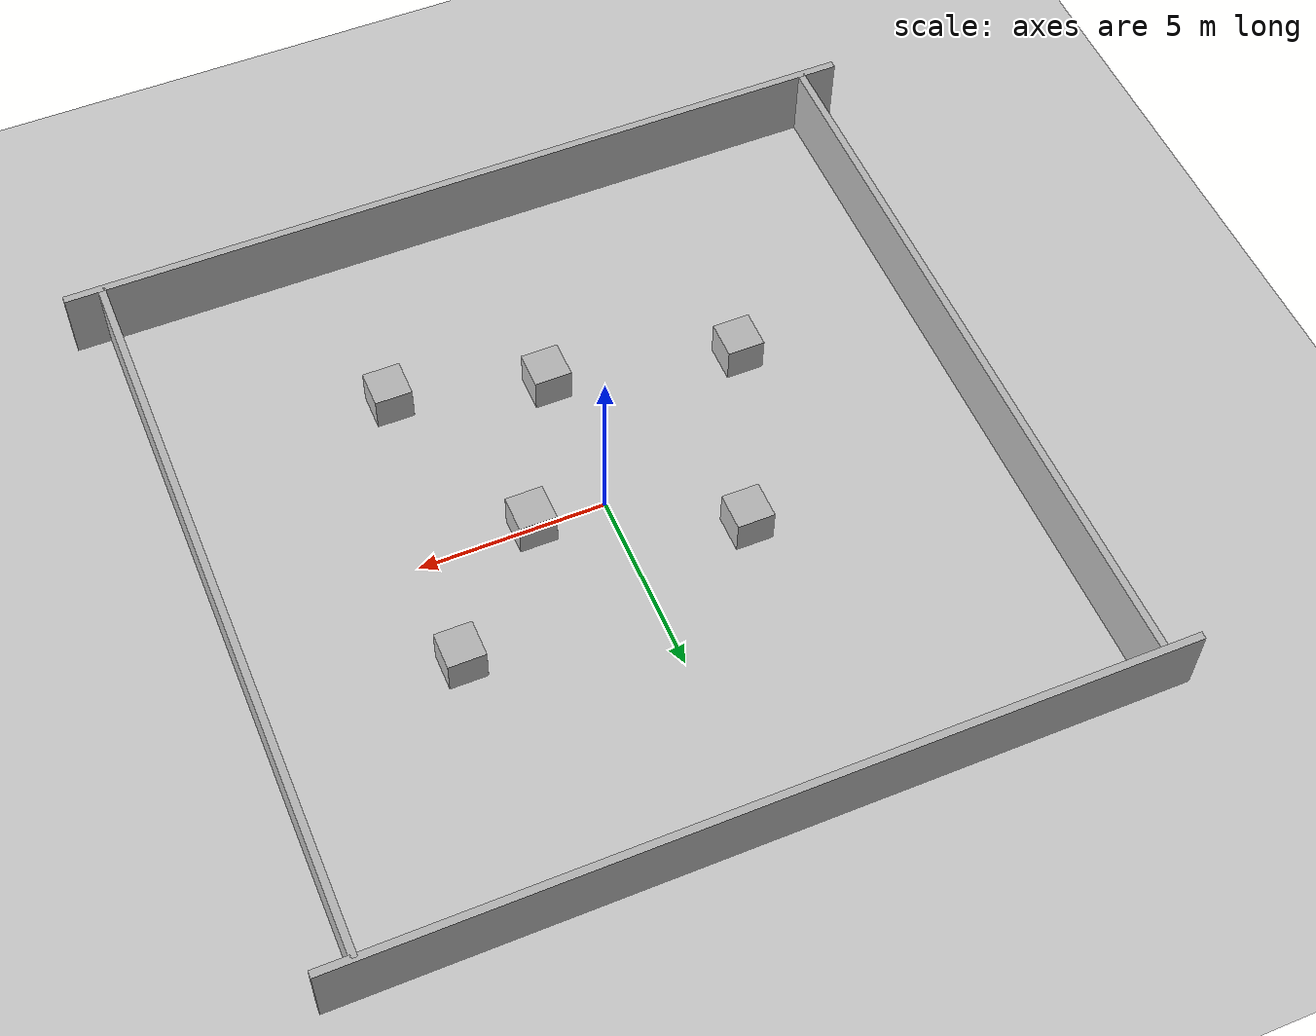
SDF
<?xml version="1.0" ?>
<sdf version="1.6">
  <world name="default">

    <include>
      <uri>model://ground_plane</uri>
    </include>

    <include>
      <uri>model://sun</uri>
    </include>

    <physics type="ode">
      <gravity>0 0 -9.8</gravity>
      <max_step_size>0.001</max_step_size>
      <real_time_update_rate>500</real_time_update_rate>
      <real_time_factor>1.0</real_time_factor>
    </physics>

    <model name="wall_north">
      <static>true</static>
      <pose>0 10 1 0 0 0</pose>
      <link name="link">
        <collision name="collision"><geometry><box><size>22 0.2 2</size></box></geometry></collision>
        <visual name="visual"><geometry><box><size>22 0.2 2</size></box></geometry></visual>
      </link>
    </model>
    <model name="wall_south">
      <static>true</static>
      <pose>0 -10 1 0 0 0</pose>
      <link name="link">
        <collision name="collision"><geometry><box><size>22 0.2 2</size></box></geometry></collision>
        <visual name="visual"><geometry><box><size>22 0.2 2</size></box></geometry></visual>
      </link>
    </model>
    <model name="wall_east">
      <static>true</static>
      <pose>10 0 1 0 0 0</pose>
      <link name="link">
        <collision name="collision"><geometry><box><size>0.2 20 2</size></box></geometry></collision>
        <visual name="visual"><geometry><box><size>0.2 20 2</size></box></geometry></visual>
      </link>
    </model>
    <model name="wall_west">
      <static>true</static>
      <pose>-10 0 1 0 0 0</pose>
      <link name="link">
        <collision name="collision"><geometry><box><size>0.2 20 2</size></box></geometry></collision>
        <visual name="visual"><geometry><box><size>0.2 20 2</size></box></geometry></visual>
      </link>
    </model>

    <model name="box_1">
      <static>true</static>
      <pose>2 0 0.5 0 0 0</pose>
      <link name="link">
        <collision name="collision"><geometry><box><size>1 1 1</size></box></geometry></collision>
        <visual name="visual"><geometry><box><size>1 1 1</size></box></geometry></visual>
      </link>
    </model>

    <model name="box_2">
      <static>true</static>
      <pose>-3 2 0.5 0 0 0</pose>
      <link name="link">
        <collision name="collision"><geometry><box><size>1 1 1</size></box></geometry></collision>
        <visual name="visual"><geometry><box><size>1 1 1</size></box></geometry></visual>
      </link>
    </model>

    <model name="box_3">
      <static>true</static>
      <pose>0 -4 0.5 0 0 0</pose>
      <link name="link">
        <collision name="collision"><geometry><box><size>1 1 1</size></box></geometry></collision>
        <visual name="visual"><geometry><box><size>1 1 1</size></box></geometry></visual>
      </link>
    </model>

    <model name="box_4">
      <static>true</static>
      <pose>5 3 0.5 0 0 0</pose>
      <link name="link">
        <collision name="collision"><geometry><box><size>1 1 1</size></box></geometry></collision>
        <visual name="visual"><geometry><box><size>1 1 1</size></box></geometry></visual>
      </link>
    </model>

    <model name="box_5">
      <static>true</static>
      <pose>-5 -3 0.5 0 0 0</pose>
      <link name="link">
        <collision name="collision"><geometry><box><size>1 1 1</size></box></geometry></collision>
        <visual name="visual"><geometry><box><size>1 1 1</size></box></geometry></visual>
      </link>
    </model>

    <model name="box_6">
      <static>true</static>
      <pose>4 -5 0.5 0 0 0</pose>
      <link name="link">
        <collision name="collision"><geometry><box><size>1 1 1</size></box></geometry></collision>
        <visual name="visual"><geometry><box><size>1 1 1</size></box></geometry></visual>
      </link>
    </model>

    <plugin name="gazebo_ros_state" filename="libgazebo_ros_state.so">
      <ros>
        <namespace>/</namespace>
      </ros>
      <update_rate></update_rate>
    </plugin>

  </world>
</sdf>
